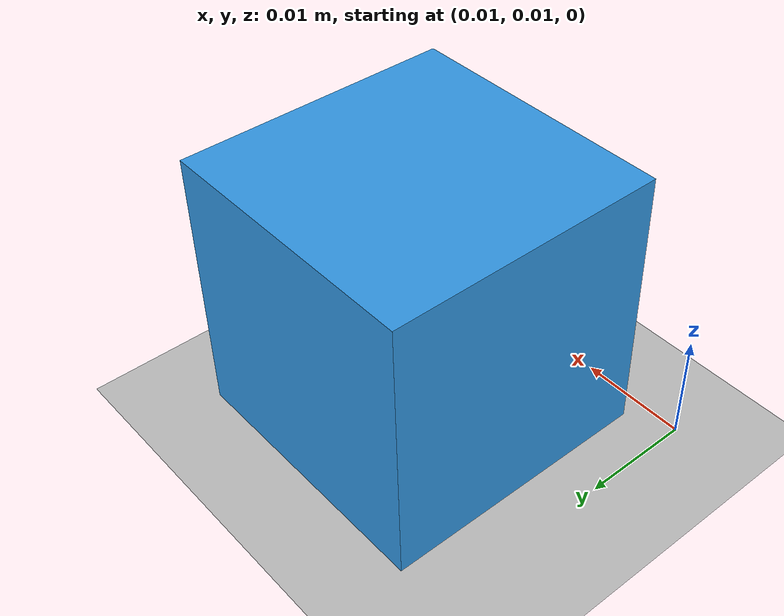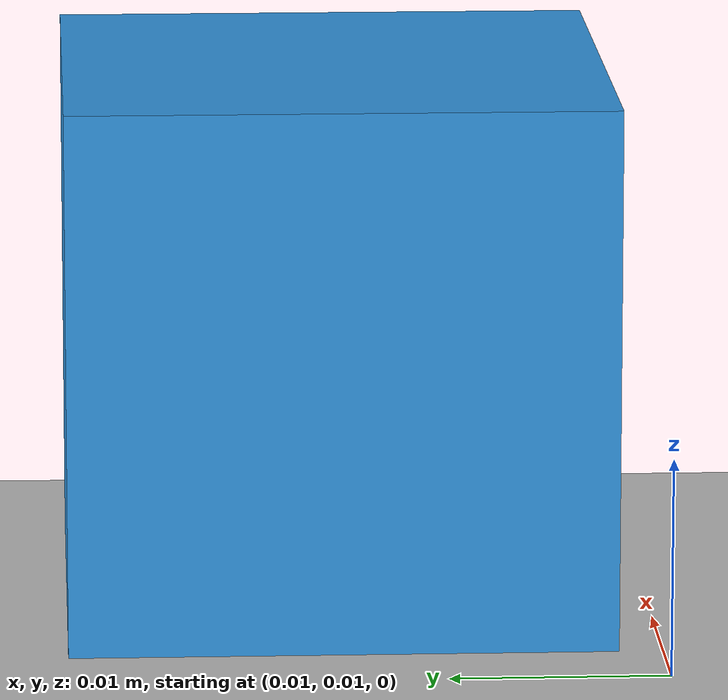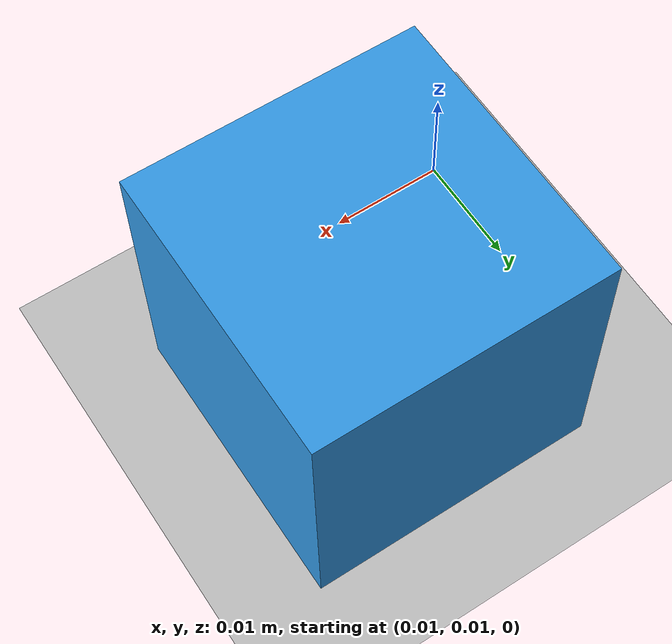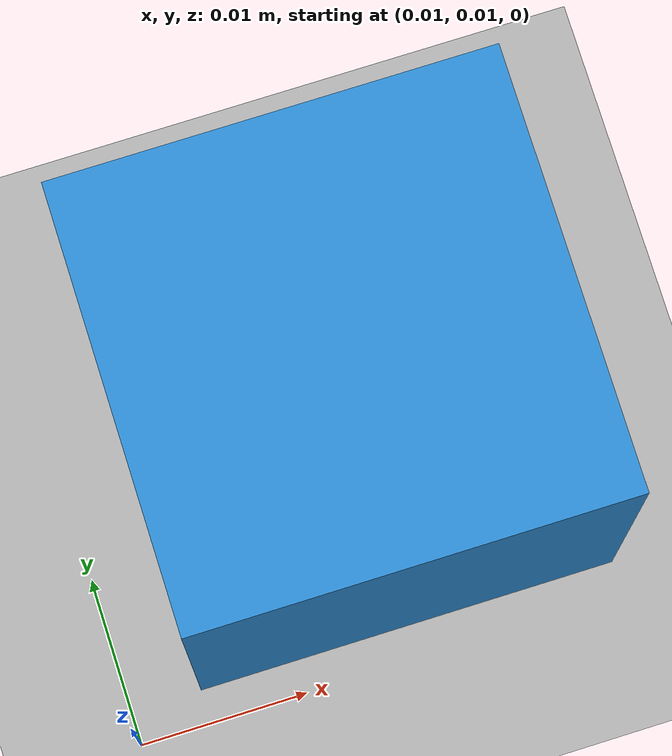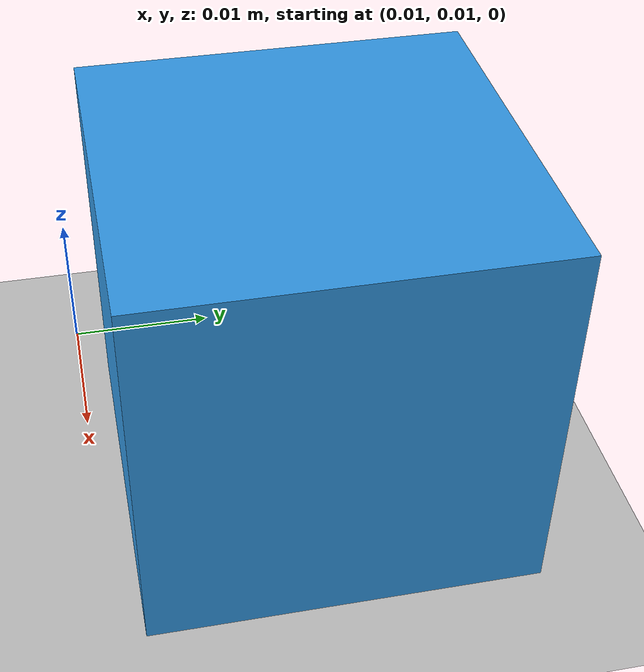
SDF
<?xml version="1.0" ?>
<sdf version="1.8">
  <world name="arm_world">

    <physics name="3ms" type="ignored">
      <max_step_size>0.003</max_step_size>
      <real_time_factor>1.0</real_time_factor>
    </physics>

    <plugin filename="ignition-gazebo-physics-system"
            name="ignition::gazebo::systems::Physics"/>
    <plugin filename="ignition-gazebo-user-commands-system"
            name="ignition::gazebo::systems::UserCommands"/>
    <plugin filename="ignition-gazebo-scene-broadcaster-system"
            name="ignition::gazebo::systems::SceneBroadcaster"/>
    <plugin filename="ignition-gazebo-contact-system"
            name="gz::sim::systems::Contact"/>
    <plugin filename="ignition-gazebo-sensors-system"
            name="ignition::gazebo::systems::Sensors">
      <render_engine>ogre2</render_engine>
    </plugin>

    <!-- ==================== 3. 光照 ==================== -->
    <light type="directional" name="sun">
      <cast_shadows>true</cast_shadows>
      <pose>0 0 10 0 0 0</pose>
      <diffuse>0.8 0.8 0.8 1</diffuse>
      <specular>0.2 0.2 0.2 1</specular>
      <direction>-0.5 0.1 -0.9</direction>
    </light>

    <!-- ==================== 4. 地面 ====================
         机械臂生成在 z=0，底座落在这张面上；目标方块也直接放在这张面上。
         ==================================================== -->
    <model name="ground_plane">
      <static>true</static>
      <link name="link">
        <collision name="collision">
          <geometry>
            <plane><normal>0 0 1</normal><size>20 20</size></plane>
          </geometry>
        </collision>
        <visual name="visual">
          <geometry>
            <plane><normal>0 0 1</normal><size>20 20</size></plane>
          </geometry>
          <material>
            <ambient>0.75 0.75 0.75 1</ambient>
            <diffuse>0.75 0.75 0.75 1</diffuse>
          </material>
        </visual>
      </link>
    </model>

    <model name="target_cube">
      <pose>0.0267 0.0245 0.0125 0 0 0</pose>
      <link name="link">
        <inertial>
          <mass>0.020</mass>
          <inertia>
            <ixx>2.083e-06</ixx><ixy>0</ixy><ixz>0</ixz>
            <iyy>2.083e-06</iyy><iyz>0</iyz>
            <izz>2.083e-06</izz>
          </inertia>
        </inertial>
        <collision name="collision">
          <geometry><box><size>0.025 0.025 0.025</size></box></geometry>
          <surface>
            <friction>
              <ode><mu>1.2</mu><mu2>1.2</mu2></ode>
            </friction>
          </surface>
        </collision>
        <visual name="visual">
          <geometry><box><size>0.025 0.025 0.025</size></box></geometry>
          <material>
            <ambient>0.2 0.6 0.9 1</ambient>
            <diffuse>0.2 0.6 0.9 1</diffuse>
          </material>
        </visual>

        <sensor name="contact_sensor" type="contact">
          <always_on>1</always_on>
          <update_rate>100</update_rate>
          <contact>
            <collision>collision</collision>
            <topic>/target_cube/contact</topic>
          </contact>
        </sensor>
      </link>
    </model>

  </world>
</sdf>
